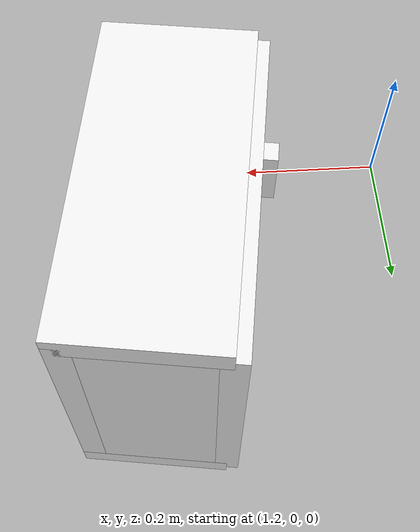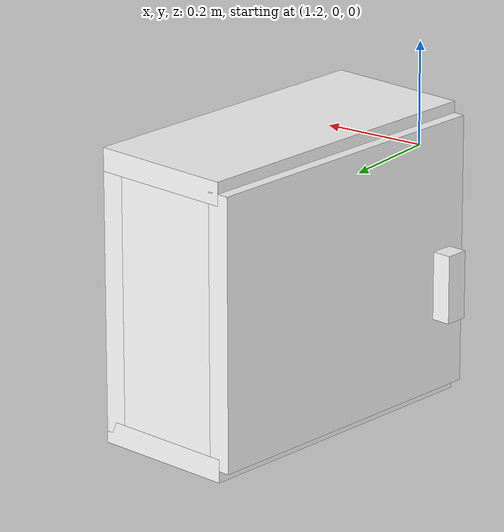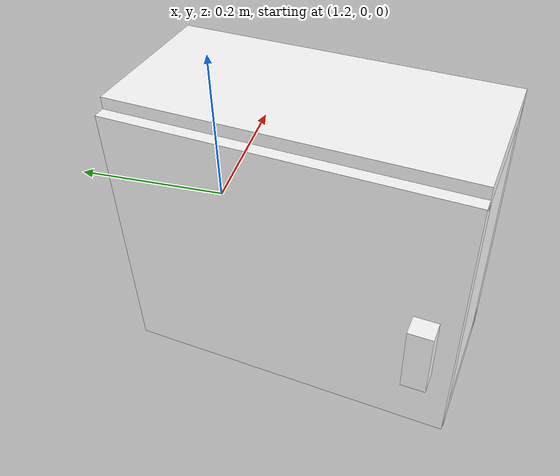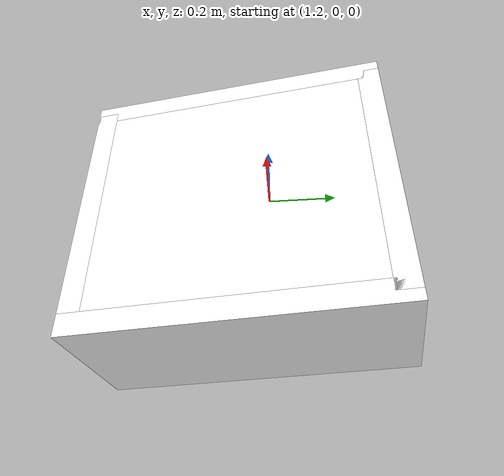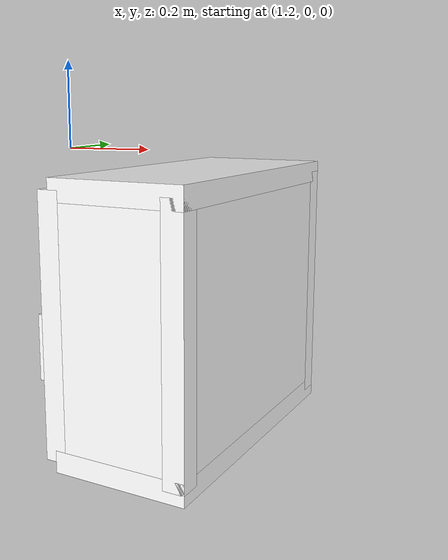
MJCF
<mujoco model="cabinet">
    <compiler angle="radian" eulerseq='zxy' />
    <option gravity = "0 0 0" />
    <option>
        <flag contact = "disable"/>
    </option>
    <statistic	extent="1.0" center="0.0 0.0 0.0"/>
    <visual>
        <map fogstart="3" fogend="5" force="0.1" znear=" 0.100000 " zfar=" 12.000000 "/>
    </visual>
    <size njmax="500" nconmax="100" />
    <actuator>
        <velocity joint="bottom_left_hinge" name="viva_revolution" kv='10'></velocity>
    </actuator>
    <asset>
        <texture builtin="flat" name="tabletex" height="32" width="32" rgb1="1 1 1" type="cube"></texture>
        <texture builtin="flat" name="objtex" height="32" width="32" rgb1="1 1 1" type="cube"></texture>
        <texture builtin="flat" name="handletex" height="32" width="32" rgb1="1 1 1" type="cube"></texture>
        <texture builtin="flat" name="wallpaper" height="32" width="32" rgb1="1 1 1" type="cube"></texture>
        <material name="geomTable" shininess="0.03" specular="0.75" texture="tabletex"></material>
        <material name="geomObj" shininess="0.03" specular="0.75" texture="objtex"></material>
        <material name="geomHandle" shininess="0.03" specular="0.75" texture="handletex"></material>
        <material name="bg" shininess="0.03" specular="0.75" texture="wallpaper"></material>
    </asset>
    <worldbody>
            <body name="cabinet_bottom" pos= " 1.539426 -0.044035 -0.605897 "  quat= " 0.070780 0.000000 0.000000 0.997492" >
                <inertial pos="0 0 0" mass="1" diaginertia="1 1 1" />
                <geom size= " 0.147802 0.330792 0.023491 "  type="box" material="geomObj" name="b"/>
                <body name="cabinet_left" pos= " 0.000000 -0.307300 0.274008 " >
                    <inertial pos="0 0 0" mass="1" diaginertia="1 1 1" />
                    <geom size= " 0.147802 0.023491 0.274008 "  type="box" material="geomObj" name="c" />
                </body>
                <body name="cabinet_right" pos= " 0.000000 0.307300 0.274008 " >
                    <inertial pos="0 0 0" mass="1" diaginertia="1 1 1" />
                    <geom size= " 0.147802 0.023491 0.274008 "  type="box" material="geomObj" name="d" />
                </body>
                <body name="cabinet_top" pos= " 0.000000 0.000000 0.548016 " >
                    <inertial pos="0 0 0" mass="1" diaginertia="1 1 1" />
                    <geom size= " 0.147802 0.330792 0.023491 "  type="box" material="geomObj" name="e"/>
                </body>
                <body name="cabinet_back" pos= " -0.124310 0.000000 0.274008 "  >
                    <inertial pos="0 0 0" mass="1" diaginertia="1 1 1" />
                    <geom size= " 0.023491 0.330792 0.274008 "  type="box" material="geomObj" name="f" />
                </body>
                <body name="cabinet_left_hinge" pos= " 0.147802 -0.330792 0.274008 " >
                    <inertial pos= " 0.000000 0.330792 0.000000 "  mass="1" diaginertia="1 1 1" />
                    <joint name="bottom_left_hinge" type="hinge" pos="0 0 0" axis="0 0 1" limited="true" range= "-2.3 0"  />
                    <geom size= " 0.023491 0.330792 0.274008 "  pos= " 0.000000 0.330792 0.000000 "  type="box" material="geomObj" name="g"/>
                    <body name="handle_link" pos= " 0.036950 0.601522 -0.054300 " >
                        <inertial pos="0 0 0" mass="1" diaginertia="1 1 1" />
                        <geom size= " 0.026382 0.023349 0.069655 "  type="box" material="geomHandle" name="h"/>
                    </body>
                </body>
            </body>
        <body name="external_camera_body_0" pos="0.0 0 0.00">
            <camera euler="-1.57 1.57 0.0" fovy=" 54.280851 " name="external_camera_0" pos="0.0 0 0"></camera>
            <inertial pos= " 0.00 0.0 0.000000 " mass="1" diaginertia="1 1 1" />
            <joint name="cam_j" pos="0.0 0 0" axis = "1 0 0" type="free" />
        </body>
    </worldbody>
</mujoco>
